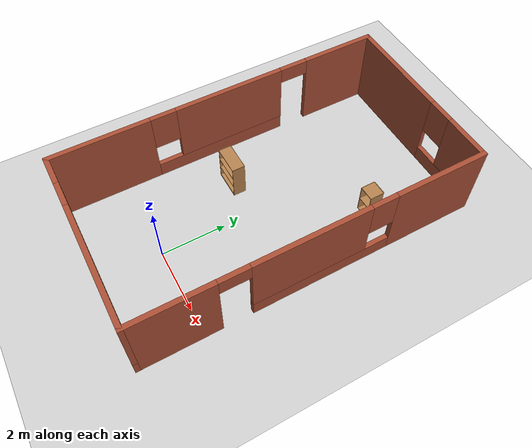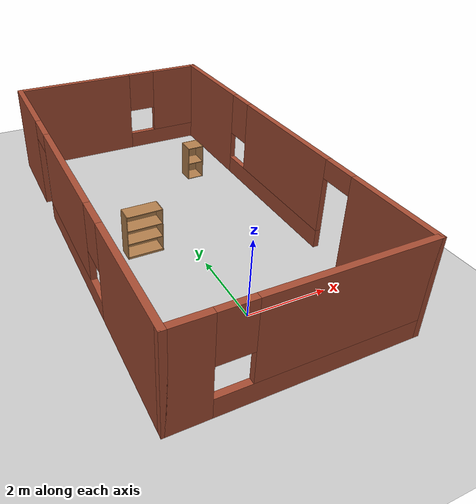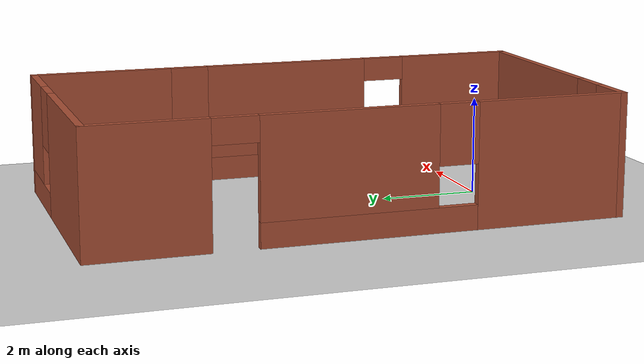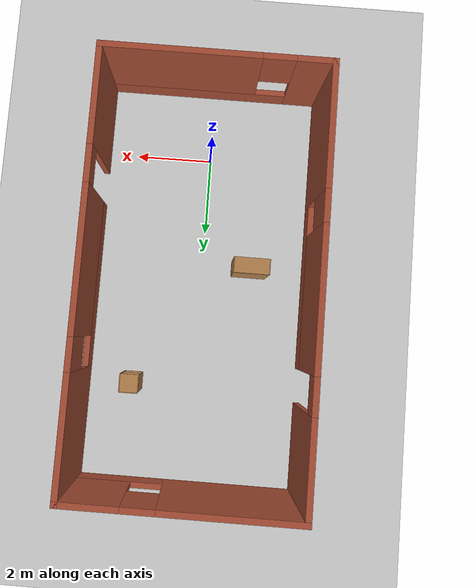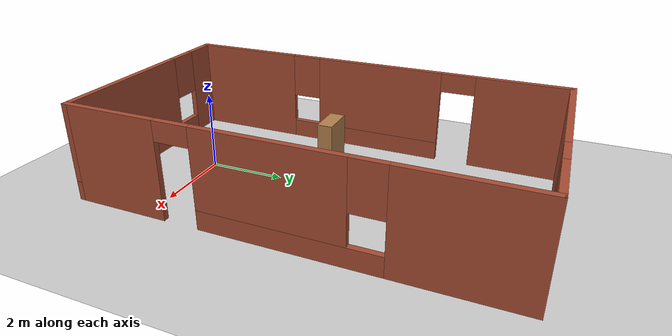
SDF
<sdf version="1.7">
 <world name="default">
  <light name="sun" type="directional">
   <pose>0 0 10 0 -0 0</pose>
   <diffuse>0.8 0.8 0.8 1</diffuse>
   <specular>0.2 0.2 0.2 1</specular>
   <attenuation>
    <range>1000</range>
    <constant>0.9</constant>
    <linear>0.01</linear>
    <quadratic>0.001</quadratic>
   </attenuation>
   <direction>-0.5 0.1 -0.9</direction>
   <spot><inner_angle>0</inner_angle><outer_angle>0</outer_angle><falloff>0</falloff></spot>
  </light>
  <model name="ground_plane">
   <static>1</static>
   <link name="link">
    <collision name="collision">
     <geometry><plane><normal>0 0 1</normal><size>100 100</size></plane></geometry>
     <surface>
      <contact><collide_bitmask>65535</collide_bitmask></contact>
      <friction><ode><mu>100</mu><mu2>50</mu2></ode></friction>
     </surface>
    </collision>
    <visual name="visual">
     <cast_shadows>0</cast_shadows>
     <geometry><plane><normal>0 0 1</normal><size>100 100</size></plane></geometry>
     <material>
      <script><uri>file://media/materials/scripts/gazebo.material</uri><name>Gazebo/Grey</name></script>
     </material>
    </visual>
   </link>
  </model>
  <gravity>0 0 -9.8</gravity>
  <magnetic_field>6e-06 2.3e-05 -4.2e-05</magnetic_field>
  <atmosphere type="adiabatic"/>
  <physics type="ode">
   <max_step_size>0.001</max_step_size>
   <real_time_factor>1</real_time_factor>
   <real_time_update_rate>1000</real_time_update_rate>
  </physics>
  <scene><ambient>0.4 0.4 0.4 1</ambient><background>0.7 0.7 0.7 1</background><shadows>1</shadows></scene>
  <audio><device>default</device></audio>
  <spherical_coordinates>
   <surface_model>EARTH_WGS84</surface_model>
   <latitude_deg>0</latitude_deg>
   <longitude_deg>0</longitude_deg>
   <elevation>0</elevation>
   <heading_deg>0</heading_deg>
  </spherical_coordinates>
  <model name="bookshelf">
   <static>1</static>
   <link name="link">
    <inertial><mass>1</mass></inertial>
    <collision name="back">
     <pose>0 0.005 0.6 0 -0 0</pose>
     <geometry><box><size>0.9 0.01 1.2</size></box></geometry>
    </collision>
    <visual name="visual1">
     <pose>0 0.005 0.6 0 -0 0</pose>
     <geometry><box><size>0.9 0.01 1.2</size></box></geometry>
     <material>
      <script><uri>file://media/materials/scripts/gazebo.material</uri><name>Gazebo/Wood</name></script>
     </material>
    </visual>
    <collision name="left_side">
     <pose>0.45 -0.195 0.6 0 -0 0</pose>
     <geometry><box><size>0.02 0.4 1.2</size></box></geometry>
    </collision>
    <visual name="visual2">
     <pose>0.45 -0.195 0.6 0 -0 0</pose>
     <geometry><box><size>0.02 0.4 1.2</size></box></geometry>
     <material>
      <script><uri>file://media/materials/scripts/gazebo.material</uri><name>Gazebo/Wood</name></script>
     </material>
    </visual>
    <collision name="right_side">
     <pose>-0.45 -0.195 0.6 0 -0 0</pose>
     <geometry><box><size>0.02 0.4 1.2</size></box></geometry>
    </collision>
    <visual name="visual3">
     <pose>-0.45 -0.195 0.6 0 -0 0</pose>
     <geometry><box><size>0.02 0.4 1.2</size></box></geometry>
     <material>
      <script><uri>file://media/materials/scripts/gazebo.material</uri><name>Gazebo/Wood</name></script>
     </material>
    </visual>
    <collision name="bottom">
     <pose>0 -0.195 0.03 0 -0 0</pose>
     <geometry><box><size>0.88 0.4 0.06</size></box></geometry>
    </collision>
    <visual name="visual4">
     <pose>0 -0.195 0.03 0 -0 0</pose>
     <geometry><box><size>0.88 0.4 0.06</size></box></geometry>
     <material>
      <script><uri>file://media/materials/scripts/gazebo.material</uri><name>Gazebo/Wood</name></script>
     </material>
    </visual>
    <collision name="top">
     <pose>0 -0.195 1.19 0 -0 0</pose>
     <geometry><box><size>0.88 0.4 0.02</size></box></geometry>
    </collision>
    <visual name="visual5">
     <pose>0 -0.195 1.19 0 -0 0</pose>
     <geometry><box><size>0.88 0.4 0.02</size></box></geometry>
     <material>
      <script><uri>file://media/materials/scripts/gazebo.material</uri><name>Gazebo/Wood</name></script>
     </material>
    </visual>
    <collision name="low_shelf">
     <pose>0 -0.195 0.43 0 -0 0</pose>
     <geometry><box><size>0.88 0.4 0.02</size></box></geometry>
    </collision>
    <visual name="visual6">
     <pose>0 -0.195 0.43 0 -0 0</pose>
     <geometry><box><size>0.88 0.4 0.02</size></box></geometry>
     <material>
      <script><uri>file://media/materials/scripts/gazebo.material</uri><name>Gazebo/Wood</name></script>
     </material>
    </visual>
    <collision name="high_shelf">
     <pose>0 -0.195 0.8 0 -0 0</pose>
     <geometry><box><size>0.88 0.4 0.02</size></box></geometry>
    </collision>
    <visual name="visual7">
     <pose>0 -0.195 0.8 0 -0 0</pose>
     <geometry><box><size>0.88 0.4 0.02</size></box></geometry>
     <material>
      <script><uri>file://media/materials/scripts/gazebo.material</uri><name>Gazebo/Wood</name></script>
     </material>
    </visual>
   </link>
   <pose>-1.23898 3.14026 0.130858 0 -0 0</pose>
  </model>
  <model name="cabinet">
   <static>1</static>
   <link name="cabinet_bottom_plate">
    <inertial>
     <pose>0 0 -1 0 -0 0</pose>
     <inertia><ixx>2.05</ixx><ixy>0</ixy><ixz>0</ixz><iyy>2.05</iyy><iyz>0</iyz><izz>2.05</izz></inertia>
     <mass>25</mass>
    </inertial>
    <collision name="cabinet_bottom_plate_geom">
     <pose>0 0 0.01 0 -0 0</pose>
     <geometry><box><size>0.45 0.45 0.02</size></box></geometry>
    </collision>
    <visual name="cabinet_bottom_plate_geom_visual">
     <pose>0 0 0.01 0 -0 0</pose>
     <geometry><box><size>0.45 0.45 0.02</size></box></geometry>
     <material>
      <script><uri>file://media/materials/scripts/gazebo.material</uri><name>Gazebo/Wood</name></script>
     </material>
    </visual>
    <collision name="cabinet_bottom_plate_geom_cabinet_back_plate">
     <pose>0.235 0 0.51 0 -0 0</pose>
     <geometry><box><size>0.02 0.45 1.02</size></box></geometry>
    </collision>
    <visual name="cabinet_bottom_plate_geom_cabinet_back_plate_visual">
     <pose>0.235 0 0.51 0 -0 0</pose>
     <geometry><box><size>0.02 0.45 1.02</size></box></geometry>
     <material>
      <script><uri>file://media/materials/scripts/gazebo.material</uri><name>Gazebo/Wood</name></script>
     </material>
    </visual>
    <collision name="cabinet_bottom_plate_geom_cabinet_left_plate">
     <pose>0 0.235 0.51 0 -0 0</pose>
     <geometry><box><size>0.45 0.02 1.02</size></box></geometry>
    </collision>
    <visual name="cabinet_bottom_plate_geom_cabinet_left_plate_visual">
     <pose>0 0.235 0.51 0 -0 0</pose>
     <geometry><box><size>0.45 0.02 1.02</size></box></geometry>
     <material>
      <script><uri>file://media/materials/scripts/gazebo.material</uri><name>Gazebo/Wood</name></script>
     </material>
    </visual>
    <collision name="cabinet_bottom_plate_geom_cabinet_middle_plate">
     <pose>0 0 0.51 0 -0 0</pose>
     <geometry><box><size>0.45 0.45 0.02</size></box></geometry>
    </collision>
    <visual name="cabinet_bottom_plate_geom_cabinet_middle_plate_visual">
     <pose>0 0 0.51 0 -0 0</pose>
     <geometry><box><size>0.45 0.45 0.02</size></box></geometry>
     <material>
      <script><uri>file://media/materials/scripts/gazebo.material</uri><name>Gazebo/Wood</name></script>
     </material>
    </visual>
    <collision name="cabinet_bottom_plate_geom_cabinet_right_plate">
     <pose>0 -0.235 0.51 0 -0 0</pose>
     <geometry><box><size>0.45 0.02 1.02</size></box></geometry>
    </collision>
    <visual name="cabinet_bottom_plate_geom_cabinet_right_plate_visual">
     <pose>0 -0.235 0.51 0 -0 0</pose>
     <geometry><box><size>0.45 0.02 1.02</size></box></geometry>
     <material>
      <script><uri>file://media/materials/scripts/gazebo.material</uri><name>Gazebo/Wood</name></script>
     </material>
    </visual>
    <collision name="cabinet_bottom_plate_geom_cabinet_top_plate">
     <pose>0 0 1.01 0 -0 0</pose>
     <geometry><box><size>0.45 0.45 0.02</size></box></geometry>
    </collision>
    <visual name="cabinet_bottom_plate_geom_cabinet_top_plate_visual">
     <pose>0 0 1.01 0 -0 0</pose>
     <geometry><box><size>0.45 0.45 0.02</size></box></geometry>
     <material>
      <script><uri>file://media/materials/scripts/gazebo.material</uri><name>Gazebo/Wood</name></script>
     </material>
    </visual>
   </link>
   <pose>1.59968 6.10039 0 0 -0 1.58061</pose>
  </model>
  <model name="test">
   <pose>0.024884 3.40077 0 0 -0 0</pose>
   <link name="Wall_13">
    <pose>-2.8 -0 0 0 -0 1.5708</pose>
    <visual name="Wall_13_Visual_0">
     <pose>-3.81018 0 1.25 0 -0 0</pose>
     <geometry><box><size>3.12964 0.15 2.5</size></box></geometry>
     <material>
      <script><uri>file://media/materials/scripts/gazebo.material</uri><name>Gazebo/Bricks</name></script>
      <ambient>1 1 1 1</ambient>
     </material>
     <meta><layer>0</layer></meta>
    </visual>
    <collision name="Wall_13_Collision_0">
     <geometry><box><size>3.12964 0.15 2.5</size></box></geometry>
     <pose>-3.81018 0 1.25 0 -0 0</pose>
    </collision>
    <visual name="Wall_13_Visual_1">
     <pose>4.17104 0 1.25 0 -0 0</pose>
     <geometry><box><size>2.40792 0.15 2.5</size></box></geometry>
     <material>
      <script><uri>file://media/materials/scripts/gazebo.material</uri><name>Gazebo/Bricks</name></script>
      <ambient>1 1 1 1</ambient>
     </material>
     <meta><layer>0</layer></meta>
    </visual>
    <collision name="Wall_13_Collision_1">
     <geometry><box><size>2.40792 0.15 2.5</size></box></geometry>
     <pose>4.17104 0 1.25 0 -0 0</pose>
    </collision>
    <visual name="Wall_13_Visual_2">
     <pose>-0.089141 0 0.25 0 -0 0</pose>
     <geometry><box><size>4.31243 0.15 0.5</size></box></geometry>
     <material>
      <script><uri>file://media/materials/scripts/gazebo.material</uri><name>Gazebo/Bricks</name></script>
      <ambient>1 1 1 1</ambient>
     </material>
     <meta><layer>0</layer></meta>
    </visual>
    <collision name="Wall_13_Collision_2">
     <geometry><box><size>4.31243 0.15 0.5</size></box></geometry>
     <pose>-0.089141 0 0.25 0 -0 0</pose>
    </collision>
    <visual name="Wall_13_Visual_3">
     <pose>0.310859 0 1.5 0 -0 0</pose>
     <geometry><box><size>3.51243 0.15 2</size></box></geometry>
     <material>
      <script><uri>file://media/materials/scripts/gazebo.material</uri><name>Gazebo/Bricks</name></script>
      <ambient>1 1 1 1</ambient>
     </material>
     <meta><layer>0</layer></meta>
    </visual>
    <collision name="Wall_13_Collision_3">
     <geometry><box><size>3.51243 0.15 2</size></box></geometry>
     <pose>0.310859 0 1.5 0 -0 0</pose>
    </collision>
    <visual name="Wall_13_Visual_4">
     <pose>-1.84536 0 1.9 0 -0 0</pose>
     <geometry><box><size>0.8 0.15 1.2</size></box></geometry>
     <material>
      <script><uri>file://media/materials/scripts/gazebo.material</uri><name>Gazebo/Bricks</name></script>
      <ambient>1 1 1 1</ambient>
     </material>
     <meta><layer>0</layer></meta>
    </visual>
    <collision name="Wall_13_Collision_4">
     <geometry><box><size>0.8 0.15 1.2</size></box></geometry>
     <pose>-1.84536 0 1.9 0 -0 0</pose>
    </collision>
    <visual name="Wall_13_Visual_5">
     <pose>2.51708 0 2.25 0 -0 0</pose>
     <geometry><box><size>0.9 0.15 0.5</size></box></geometry>
     <material>
      <script><uri>file://media/materials/scripts/gazebo.material</uri><name>Gazebo/Bricks</name></script>
      <ambient>1 1 1 1</ambient>
     </material>
     <meta><layer>0</layer></meta>
    </visual>
    <collision name="Wall_13_Collision_5">
     <geometry><box><size>0.9 0.15 0.5</size></box></geometry>
     <pose>2.51708 0 2.25 0 -0 0</pose>
    </collision>
   </link>
   <link name="Wall_14">
    <pose>0 5.3 0 0 -0 0</pose>
    <visual name="Wall_14_Visual_0">
     <pose>-1.15511 0 1.25 0 -0 0</pose>
     <geometry><box><size>3.43978 0.15 2.5</size></box></geometry>
     <material>
      <script><uri>file://media/materials/scripts/gazebo.material</uri><name>Gazebo/Bricks</name></script>
      <ambient>1 1 1 1</ambient>
     </material>
     <meta><layer>0</layer></meta>
    </visual>
    <collision name="Wall_14_Collision_0">
     <geometry><box><size>3.43978 0.15 2.5</size></box></geometry>
     <pose>-1.15511 0 1.25 0 -0 0</pose>
    </collision>
    <visual name="Wall_14_Visual_1">
     <pose>1.71989 0 0.25 0 -0 0</pose>
     <geometry><box><size>2.31022 0.15 0.5</size></box></geometry>
     <material>
      <script><uri>file://media/materials/scripts/gazebo.material</uri><name>Gazebo/Bricks</name></script>
      <ambient>1 1 1 1</ambient>
     </material>
     <meta><layer>0</layer></meta>
    </visual>
    <collision name="Wall_14_Collision_1">
     <geometry><box><size>2.31022 0.15 0.5</size></box></geometry>
     <pose>1.71989 0 0.25 0 -0 0</pose>
    </collision>
    <visual name="Wall_14_Visual_2">
     <pose>2.11989 0 1.5 0 -0 0</pose>
     <geometry><box><size>1.51022 0.15 2</size></box></geometry>
     <material>
      <script><uri>file://media/materials/scripts/gazebo.material</uri><name>Gazebo/Bricks</name></script>
      <ambient>1 1 1 1</ambient>
     </material>
     <meta><layer>0</layer></meta>
    </visual>
    <collision name="Wall_14_Collision_2">
     <geometry><box><size>1.51022 0.15 2</size></box></geometry>
     <pose>2.11989 0 1.5 0 -0 0</pose>
    </collision>
    <visual name="Wall_14_Visual_3">
     <pose>0.964781 0 1.9 0 -0 0</pose>
     <geometry><box><size>0.8 0.15 1.2</size></box></geometry>
     <material>
      <script><uri>file://media/materials/scripts/gazebo.material</uri><name>Gazebo/Bricks</name></script>
      <ambient>1 1 1 1</ambient>
     </material>
     <meta><layer>0</layer></meta>
    </visual>
    <collision name="Wall_14_Collision_3">
     <geometry><box><size>0.8 0.15 1.2</size></box></geometry>
     <pose>0.964781 0 1.9 0 -0 0</pose>
    </collision>
   </link>
   <link name="Wall_15">
    <pose>2.8 -0 0 0 -0 -1.5708</pose>
    <visual name="Wall_15_Visual_0">
     <pose>-3.89334 0 1.25 0 -0 0</pose>
     <geometry><box><size>2.96333 0.15 2.5</size></box></geometry>
     <material>
      <script><uri>file://media/materials/scripts/gazebo.material</uri><name>Gazebo/Bricks</name></script>
      <ambient>1 1 1 1</ambient>
     </material>
     <meta><layer>0</layer></meta>
    </visual>
    <collision name="Wall_15_Collision_0">
     <geometry><box><size>2.96333 0.15 2.5</size></box></geometry>
     <pose>-3.89334 0 1.25 0 -0 0</pose>
    </collision>
    <visual name="Wall_15_Visual_1">
     <pose>4.11448 0 1.25 0 -0 0</pose>
     <geometry><box><size>2.52104 0.15 2.5</size></box></geometry>
     <material>
      <script><uri>file://media/materials/scripts/gazebo.material</uri><name>Gazebo/Bricks</name></script>
      <ambient>1 1 1 1</ambient>
     </material>
     <meta><layer>0</layer></meta>
    </visual>
    <collision name="Wall_15_Collision_1">
     <geometry><box><size>2.52104 0.15 2.5</size></box></geometry>
     <pose>4.11448 0 1.25 0 -0 0</pose>
    </collision>
    <visual name="Wall_15_Visual_2">
     <pose>-0.228855 0 0.25 0 -0 0</pose>
     <geometry><box><size>4.36563 0.15 0.5</size></box></geometry>
     <material>
      <script><uri>file://media/materials/scripts/gazebo.material</uri><name>Gazebo/Bricks</name></script>
      <ambient>1 1 1 1</ambient>
     </material>
     <meta><layer>0</layer></meta>
    </visual>
    <collision name="Wall_15_Collision_2">
     <geometry><box><size>4.36563 0.15 0.5</size></box></geometry>
     <pose>-0.228855 0 0.25 0 -0 0</pose>
    </collision>
    <visual name="Wall_15_Visual_3">
     <pose>0.171145 0 1.5 0 -0 0</pose>
     <geometry><box><size>3.56563 0.15 2</size></box></geometry>
     <material>
      <script><uri>file://media/materials/scripts/gazebo.material</uri><name>Gazebo/Bricks</name></script>
      <ambient>1 1 1 1</ambient>
     </material>
     <meta><layer>0</layer></meta>
    </visual>
    <collision name="Wall_15_Collision_3">
     <geometry><box><size>3.56563 0.15 2</size></box></geometry>
     <pose>0.171145 0 1.5 0 -0 0</pose>
    </collision>
    <visual name="Wall_15_Visual_4">
     <pose>-2.01167 0 1.9 0 -0 0</pose>
     <geometry><box><size>0.8 0.15 1.2</size></box></geometry>
     <material>
      <script><uri>file://media/materials/scripts/gazebo.material</uri><name>Gazebo/Bricks</name></script>
      <ambient>1 1 1 1</ambient>
     </material>
     <meta><layer>0</layer></meta>
    </visual>
    <collision name="Wall_15_Collision_4">
     <geometry><box><size>0.8 0.15 1.2</size></box></geometry>
     <pose>-2.01167 0 1.9 0 -0 0</pose>
    </collision>
    <visual name="Wall_15_Visual_5">
     <pose>2.40396 0 2.25 0 -0 0</pose>
     <geometry><box><size>0.9 0.15 0.5</size></box></geometry>
     <material>
      <script><uri>file://media/materials/scripts/gazebo.material</uri><name>Gazebo/Bricks</name></script>
      <ambient>1 1 1 1</ambient>
     </material>
     <meta><layer>0</layer></meta>
    </visual>
    <collision name="Wall_15_Collision_5">
     <geometry><box><size>0.9 0.15 0.5</size></box></geometry>
     <pose>2.40396 0 2.25 0 -0 0</pose>
    </collision>
   </link>
   <link name="Wall_5">
    <pose>0 -5.3 0 0 -0 0</pose>
    <visual name="Wall_5_Visual_0">
     <pose>-2.37872 0 1.25 0 -0 0</pose>
     <geometry><box><size>0.992563 0.15 2.5</size></box></geometry>
     <material>
      <script><uri>file://media/materials/scripts/gazebo.material</uri><name>Gazebo/Bricks</name></script>
      <ambient>1 1 1 1</ambient>
     </material>
     <meta><layer>0</layer></meta>
    </visual>
    <collision name="Wall_5_Collision_0">
     <geometry><box><size>0.992563 0.15 2.5</size></box></geometry>
     <pose>-2.37872 0 1.25 0 -0 0</pose>
    </collision>
    <visual name="Wall_5_Visual_1">
     <pose>0.496282 0 0.25 0 -0 0</pose>
     <geometry><box><size>4.75744 0.15 0.5</size></box></geometry>
     <material>
      <script><uri>file://media/materials/scripts/gazebo.material</uri><name>Gazebo/Bricks</name></script>
      <ambient>1 1 1 1</ambient>
     </material>
     <meta><layer>0</layer></meta>
    </visual>
    <collision name="Wall_5_Collision_1">
     <geometry><box><size>4.75744 0.15 0.5</size></box></geometry>
     <pose>0.496282 0 0.25 0 -0 0</pose>
    </collision>
    <visual name="Wall_5_Visual_2">
     <pose>0.896282 0 1.5 0 -0 0</pose>
     <geometry><box><size>3.95744 0.15 2</size></box></geometry>
     <material>
      <script><uri>file://media/materials/scripts/gazebo.material</uri><name>Gazebo/Bricks</name></script>
      <ambient>1 1 1 1</ambient>
     </material>
     <meta><layer>0</layer></meta>
    </visual>
    <collision name="Wall_5_Collision_2">
     <geometry><box><size>3.95744 0.15 2</size></box></geometry>
     <pose>0.896282 0 1.5 0 -0 0</pose>
    </collision>
    <visual name="Wall_5_Visual_3">
     <pose>-1.48244 0 1.9 0 -0 0</pose>
     <geometry><box><size>0.8 0.15 1.2</size></box></geometry>
     <material>
      <script><uri>file://media/materials/scripts/gazebo.material</uri><name>Gazebo/Bricks</name></script>
      <ambient>1 1 1 1</ambient>
     </material>
     <meta><layer>0</layer></meta>
    </visual>
    <collision name="Wall_5_Collision_3">
     <geometry><box><size>0.8 0.15 1.2</size></box></geometry>
     <pose>-1.48244 0 1.9 0 -0 0</pose>
    </collision>
   </link>
   <static>1</static>
  </model>
 </world>
</sdf>
